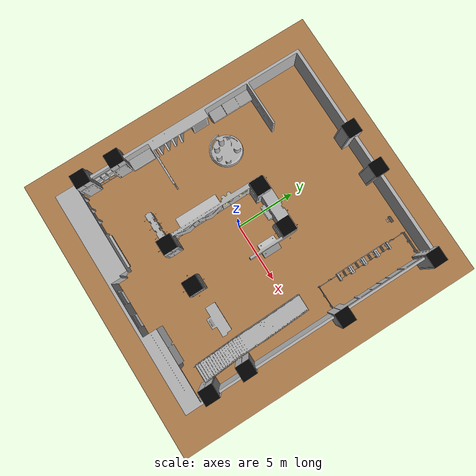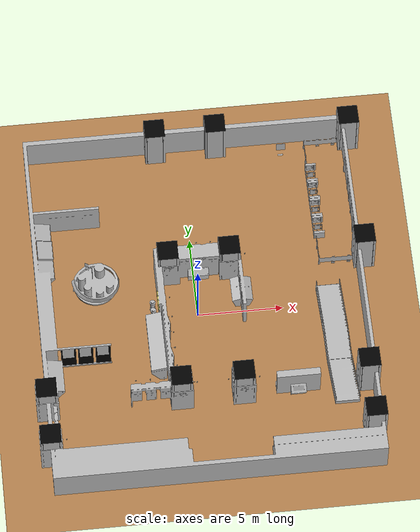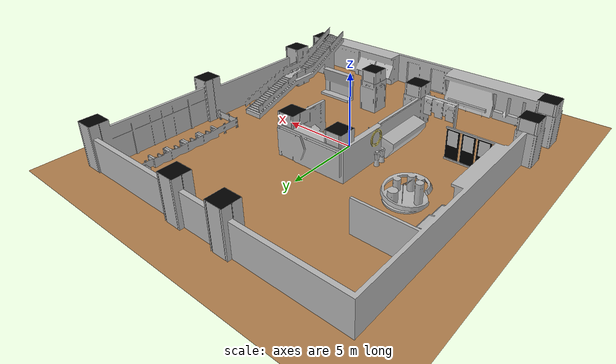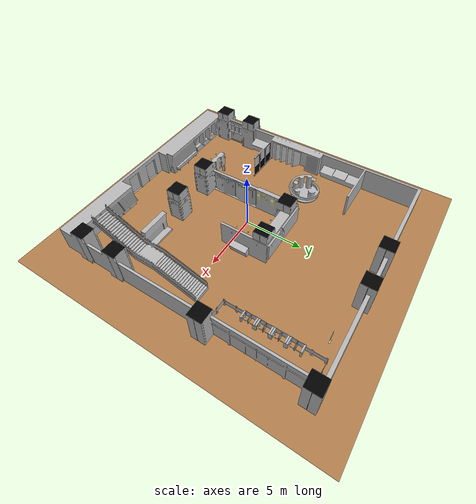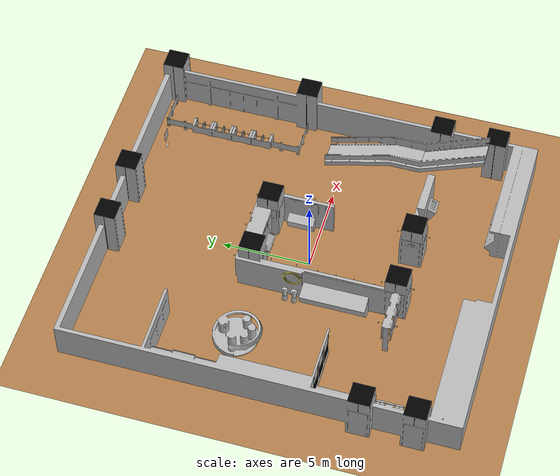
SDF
<sdf version="1.6">
 <world name="default">
  <model name="ground_plane">
   <static>1</static>
   <link name="link">
    <collision name="collision">
     <geometry><plane><normal>0 0 1</normal><size>100 100</size></plane></geometry>
     <surface><friction><ode><mu>100</mu><mu2>50</mu2></ode></friction></surface>
    </collision>
    <visual name="visual">
     <cast_shadows>0</cast_shadows>
     <geometry><plane><normal>0 0 1</normal><size>22 22</size></plane></geometry>
     <material><script><uri>model://texture/texture.material</uri><name>Floor_Wood</name></script></material>
    </visual>
   </link>
  </model>
  <physics name="default_physics" default="0" type="ode">
   <ode>
    <solver>
     <type>quick</type>
     <iters>150</iters>
     <sor>1.3</sor>
     <use_dynamic_moi_rescaling>0</use_dynamic_moi_rescaling>
    </solver>
    <constraints>
     <cfm>1e-05</cfm>
     <erp>0.2</erp>
     <contact_max_correcting_vel>1000</contact_max_correcting_vel>
     <contact_surface_layer>0.01</contact_surface_layer>
    </constraints>
   </ode>
   <max_step_size>0.004</max_step_size>
   <real_time_factor>1000</real_time_factor>
   <real_time_update_rate>250</real_time_update_rate>
  </physics>
  <model name="room">
   <link name="iscas_museum::link">
    <inertial><mass>15</mass></inertial>
    <collision name="collision">
     <pose>0 0 0 0 0 -1.57</pose>
     <geometry><mesh><uri>model://iscas_museum/meshes/ISCAS_museum.dae</uri></mesh></geometry>
    </collision>
    <visual name="visual">
     <pose>0 0 0 0 0 -1.57</pose>
     <geometry><mesh><uri>model://iscas_museum/meshes/ISCAS_museum.dae</uri></mesh></geometry>
    </visual>
   </link>
   <static>1</static>
  </model>
  <gravity>0 0 -9.8066</gravity>
  <magnetic_field>6e-06 2.3e-05 -4.2e-05</magnetic_field>
  <atmosphere type="adiabatic"/>
  <scene><ambient>0.4 0.4 0.4 1</ambient><background>0.7 0.7 0.7 1</background><shadows>1</shadows></scene>
  <spherical_coordinates>
   <surface_model>EARTH_WGS84</surface_model>
   <latitude_deg>0</latitude_deg>
   <longitude_deg>0</longitude_deg>
   <elevation>0</elevation>
   <heading_deg>0</heading_deg>
  </spherical_coordinates>
  <light name="user_directional_light_0" type="directional">
   <pose>-0.024934 0.002945 1 0 -0 0</pose>
   <diffuse>0.5 0.5 0.5 1</diffuse>
   <specular>0.1 0.1 0.1 1</specular>
   <direction>0.1 0.1 -0.9</direction>
   <attenuation>
    <range>20</range>
    <constant>0.5</constant>
    <linear>0.01</linear>
    <quadratic>0.001</quadratic>
   </attenuation>
  </light>
 </world>
</sdf>
